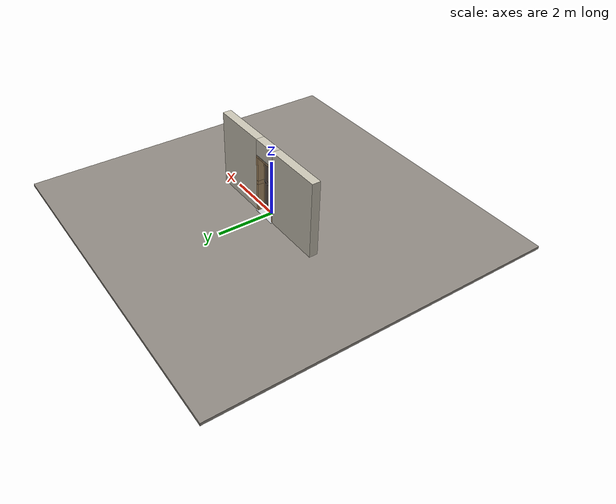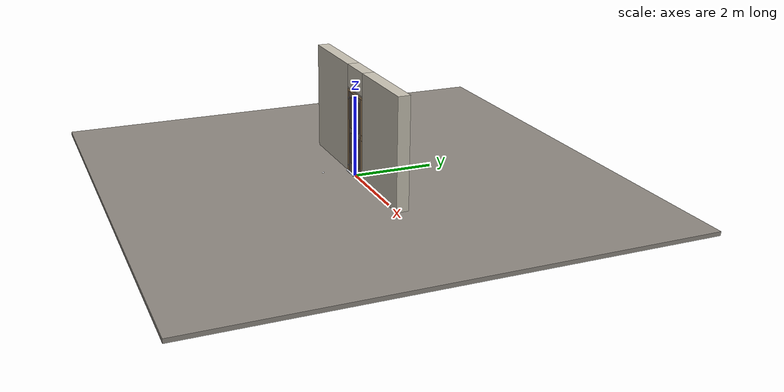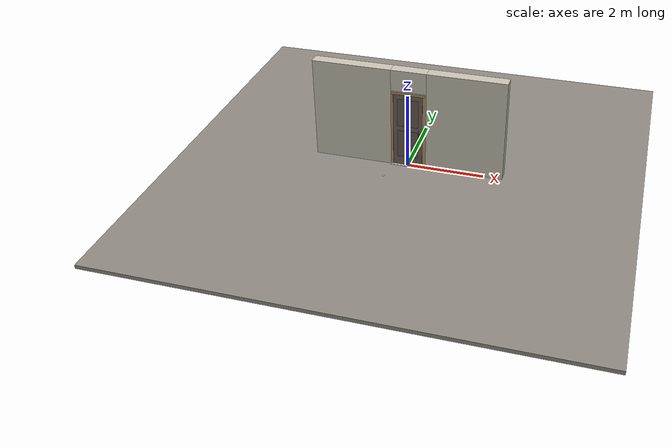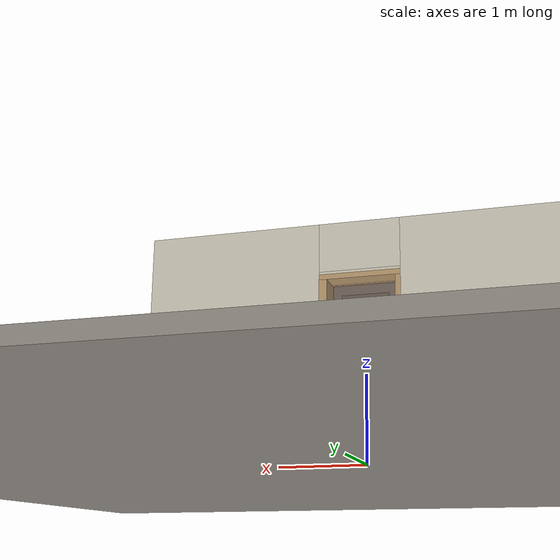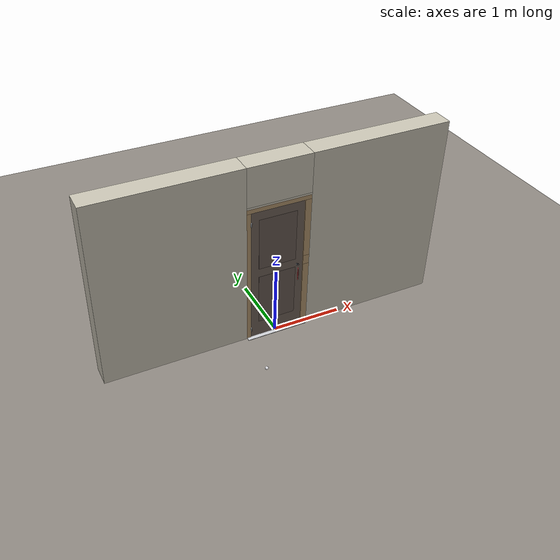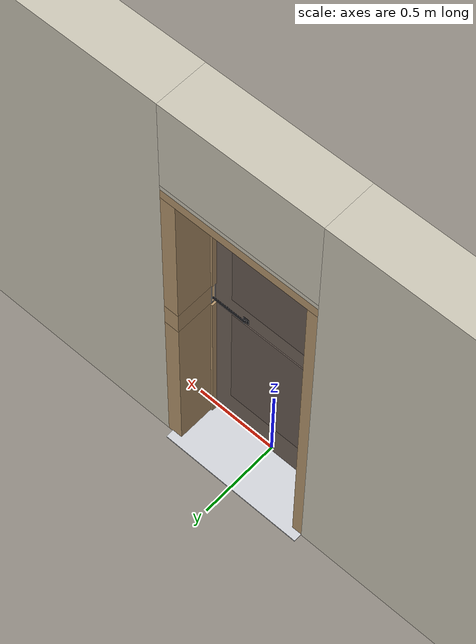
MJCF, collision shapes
<?xml version="1.0" ?>
<mujoco model="db0517_swing_single_full">
  <compiler angle="radian" meshdir="../../hardware" texturedir="../../textures" autolimits="true" inertiafromgeom="false"/>
  <option timestep="0.002" integrator="implicitfast" cone="elliptic" impratio="10" noslip_iterations="3">
    <flag multiccd="enable"/>
  </option>
  <size memory="16M"/>
  <default>
    <geom condim="4" solref="0.005 1" solimp="0.95 0.99 0.001"/>
    <joint solreflimit="0.005 1" solimplimit="0.95 0.99 0.001"/>
    <tendon solreflimit="0.005 1"/>
    <equality solref="0.002 1"/>
  </default>
  <visual>
    <headlight ambient="0.4 0.4 0.4" diffuse="0.7 0.7 0.7" specular="0.2 0.2 0.2"/>
    <quality shadowsize="4096"/>
    <map znear="0.01" zfar="60"/>
  </visual>
  <asset>
    <mesh name="strap_hinge_118b895b75" file="strap_hinge_118b895b75.obj"/>
    <mesh name="thumb_latch_0073ea78ed" file="thumb_latch_0073ea78ed.obj"/>
    <material name="mat_floor" rgba="0.55 0.53 0.5 1" specular="0.2" shininess="0.15" reflectance="0"/>
    <material name="mat_wall" rgba="0.78 0.76 0.7 1" specular="0.2" shininess="0.1" reflectance="0"/>
    <material name="mat_leaf" rgba="0.43 0.375 0.34 1" specular="0.2" shininess="0.55" reflectance="0"/>
    <material name="mat_leaf_panel" rgba="0.396 0.345 0.313 1" specular="0.2" shininess="0.55" reflectance="0"/>
    <material name="mat_hinge" rgba="0.65 0.66 0.68 1" specular="0.74" shininess="0.5" reflectance="0.36"/>
    <material name="mat_op_wrought_iron" rgba="0.08 0.08 0.09 1" specular="0.56" shininess="0.25" reflectance="0.24"/>
    <material name="mat_frame" rgba="0.7 0.58 0.42 1" specular="0.2" shininess="0.5" reflectance="0"/>
    <material name="mat_threshold" rgba="0.8 0.81 0.83 1" specular="0.8" shininess="0.6" reflectance="0.4"/>
    <material name="mat_stop" rgba="0.9 0.9 0.92 1" specular="0.8" shininess="0.9" reflectance="0.4"/>
    <texture name="skybox" type="skybox" builtin="gradient" rgb1="0.6 0.7 0.85" rgb2="0.9 0.92 0.95" width="256" height="256"/>
  </asset>
  <worldbody>
    <light name="sun" pos="1.5 -2.5 4" dir="-0.3 0.5 -0.8" directional="true" diffuse="0.8 0.8 0.8" specular="0.3 0.3 0.3" castshadow="true"/>
    <light name="fill" pos="-1.5 2.5 3" dir="0.3 -0.5 -0.7" directional="true" diffuse="0.35 0.35 0.4" castshadow="false"/>
    <camera name="robot_view" pos="0 -2.416687 1.734312" xyaxes="1 0 0 0 0.26963 0.962964" fovy="52"/>
    <camera name="far_view" pos="0 2.667687 1.734312" xyaxes="-1 0 0 0 -0.26963 0.962964" fovy="52"/>
    <camera name="iso" pos="1.932062 -2.009937 2.141063" xyaxes="0.741536 0.670913 0 -0.242917 0.268487 0.932151" fovy="46"/>
    <camera name="detail_handle" pos="0.4805 -0.8525 1.195" xyaxes="0.97561 0.219512 0 -0.070934 0.315262 0.94635" fovy="38"/>
    <geom name="floor" type="box" size="6 6 0.05" pos="0 0 -0.05" material="mat_floor" group="0" contype="1" conaffinity="1" friction="0.8 0.005 0.0001" density="2400"/>
    <geom name="wall_left" type="box" size="1.02775 0.15 1.35" pos="-1.47225 0.1255 1.35" material="mat_wall" group="0" contype="1" conaffinity="1" friction="0.6 0.005 0.0001" density="800"/>
    <geom name="wall_right" type="box" size="1.01275 0.15 1.35" pos="1.48725 0.1255 1.35" material="mat_wall" group="0" contype="1" conaffinity="1" friction="0.6 0.005 0.0001" density="800"/>
    <geom name="wall_header" type="box" size="0.4595 0.15 0.2825" pos="0.015 0.1255 2.4175" material="mat_wall" group="0" contype="1" conaffinity="1" friction="0.6 0.005 0.0001" density="800"/>
    <geom name="hinge_pintle_0" type="cylinder" size="0.008 0.02" pos="-0.3815 -0.0245 0.133" material="mat_hinge" group="1" contype="0" conaffinity="0" density="7850"/>
    <geom name="hinge_pintle_1" type="cylinder" size="0.008 0.02" pos="-0.3815 -0.0245 1.865" material="mat_hinge" group="1" contype="0" conaffinity="0" density="7850"/>
    <geom name="leaf_latch_bar_keeper_b" type="box" size="0.015 0.0025 0.0005" pos="0.384 0.0295 1.0275" quat="-0.5 -0.5 0.5 0.5" material="mat_op_wrought_iron" group="1" contype="0" conaffinity="0" density="7800"/>
    <geom name="leaf_latch_bar_keeper_l" type="box" size="0.0025 0.07 0.0005" pos="0.384 0.042 1.1" quat="-0.5 -0.5 0.5 0.5" material="mat_op_wrought_iron" group="1" contype="0" conaffinity="0" density="7800"/>
    <geom name="leaf_latch_bar_keeper_t" type="box" size="0.015 0.0025 0.0005" pos="0.384 0.0295 1.1725" quat="-0.5 -0.5 0.5 0.5" material="mat_op_wrought_iron" group="1" contype="0" conaffinity="0" density="7800"/>
    <geom name="leaf_latch_bar_keeper_r" type="box" size="0.0025 0.07 0.0005" pos="0.384 0.017 1.1" quat="-0.5 -0.5 0.5 0.5" material="mat_op_wrought_iron" group="1" contype="0" conaffinity="0" density="7800"/>
    <geom name="jamb_hinge" type="box" size="0.03 0.15 1.0225" pos="-0.4145 0.1255 1.0225" material="mat_frame" group="0" contype="1" conaffinity="1" friction="0.6 0.005 0.0001" density="750"/>
    <geom name="strike_1100_wall_n" type="box" size="0.045 0.118 0.07" pos="0.4295 0.1575 1.1" material="mat_frame" group="0" contype="1" conaffinity="1" friction="0.6 0.005 0.0001" density="750"/>
    <geom name="strike_1100_wall_p" type="box" size="0.045 0.022 0.07" pos="0.4295 -0.0025 1.1" material="mat_frame" group="0" contype="1" conaffinity="1" friction="0.6 0.005 0.0001" density="750"/>
    <geom name="strike_1100_back" type="box" size="0.035 0.01 0.07" pos="0.4395 0.0295 1.1" material="mat_frame" group="0" contype="1" conaffinity="1" friction="0.6 0.005 0.0001" density="750"/>
    <geom name="jamb_strike_0" type="box" size="0.045 0.15 0.515" pos="0.4295 0.1255 0.515" material="mat_frame" group="0" contype="1" conaffinity="1" friction="0.6 0.005 0.0001" density="750"/>
    <geom name="jamb_strike_1" type="box" size="0.045 0.15 0.4375" pos="0.4295 0.1255 1.6075" material="mat_frame" group="0" contype="1" conaffinity="1" friction="0.6 0.005 0.0001" density="750"/>
    <geom name="jamb_head" type="box" size="0.4595 0.15 0.03" pos="0.015 0.1255 2.075" material="mat_frame" group="0" contype="1" conaffinity="1" friction="0.6 0.005 0.0001" density="750"/>
    <geom name="head_stud" type="box" size="0.4595 0.15 0.015" pos="0.015 0.1255 2.12" material="mat_wall" group="0" contype="1" conaffinity="1" friction="0.6 0.005 0.0001" density="500"/>
    <geom name="stop_hinge" type="box" size="0.0055 0.016 1.0225" pos="-0.379 0.034 1.0225" material="mat_frame" group="0" contype="1" conaffinity="1" friction="0.6 0.005 0.0001" density="750"/>
    <geom name="stop_strike" type="box" size="0.0055 0.016 0.509" pos="0.379 0.034 0.509" material="mat_frame" group="0" contype="1" conaffinity="1" friction="0.6 0.005 0.0001" density="750"/>
    <geom name="stop_strike_1" type="box" size="0.0055 0.016 0.4315" pos="0.379 0.034 1.6135" material="mat_frame" group="0" contype="1" conaffinity="1" friction="0.6 0.005 0.0001" density="750"/>
    <geom name="stop_head" type="box" size="0.3845 0.016 0.0055" pos="0 0.034 2.0395" material="mat_frame" group="0" contype="1" conaffinity="1" friction="0.6 0.005 0.0001" density="750"/>
    <geom name="threshold" type="box" size="0.4445 0.2 0.004" pos="0 0.1255 0.004" material="mat_threshold" group="0" contype="1" conaffinity="1" friction="0.6 0.005 0.0001" density="2700"/>
    <geom name="floor_stop_dome" type="sphere" size="0.025" pos="-0.457875 -0.667992 0" material="mat_stop" group="0" contype="1" conaffinity="1" friction="0.6 0.005 0.0001" density="7000"/>
    <geom name="hinge_pintle_0_strap_0" type="box" size="0.0064 0.01775 0.016" pos="-0.3815 0.00075 0.133" material="mat_hinge" group="1" contype="0" conaffinity="0" density="7850"/>
    <geom name="hinge_pintle_1_strap_0" type="box" size="0.0064 0.01775 0.016" pos="-0.3815 0.00075 1.865" material="mat_hinge" group="1" contype="0" conaffinity="0" density="7850"/>
    <site name="approach_point" pos="0 -1.5 0" quat="1 0 0 0" size="0.05" rgba="0.2 0.9 0.2 0.5" group="4"/>
    <site name="goal_point" pos="0 1.5 0" quat="1 0 0 0" size="0.05" rgba="0.2 0.9 0.2 0.5" group="4"/>
    <site name="door_plane_center" pos="0 0 1.0225" quat="1 0 0 0" size="0.02" rgba="0.2 0.9 0.2 0.5" group="4"/>
    <body name="leaf" pos="-0.3845 0 0">
      <inertial pos="0.374885 -0.00327 1.022778" mass="36.533566" quat="-0.499785 0.499181 0.50092 0.500112" diaginertia="1.777672962 14.128823392 15.894389347"/>
      <joint name="leaf_hinge" type="hinge" axis="0 0 -1" pos="0.003 -0.0245 0" limited="true" range="0 1.658063" damping="0.173726" frictionloss="8.977736" armature="0.02"/>
      <geom name="leaf_slab" type="box" size="0.381 0.0175 1.016" pos="0.384 0 1.025" material="mat_leaf" group="0" contype="1" conaffinity="1" friction="0.35 0.005 0.0001" density="1"/>
      <geom name="leaf_panel_0_n" type="box" size="0.271 0.003 0.38422" pos="0.384 -0.0205 0.63674" material="mat_leaf_panel" group="1" contype="0" conaffinity="0" density="1"/>
      <geom name="leaf_panel_0_p" type="box" size="0.271 0.003 0.38422" pos="0.384 0.0205 0.63674" material="mat_leaf_panel" group="1" contype="0" conaffinity="0" density="1"/>
      <geom name="leaf_panel_1_n" type="box" size="0.271 0.003 0.38422" pos="0.384 -0.0205 1.53518" material="mat_leaf_panel" group="1" contype="0" conaffinity="0" density="1"/>
      <geom name="leaf_panel_1_p" type="box" size="0.271 0.003 0.38422" pos="0.384 0.0205 1.53518" material="mat_leaf_panel" group="1" contype="0" conaffinity="0" density="1"/>
      <geom name="hinge_strap_0" type="mesh" mesh="strap_hinge_118b895b75" pos="0.003 -0.0205 0.159" material="mat_hinge" group="1" contype="0" conaffinity="0" density="7850"/>
      <geom name="hinge_strap_eye_0" type="cylinder" size="0.011 0.012" pos="0.003 -0.0245 0.159" material="mat_hinge" group="1" contype="0" conaffinity="0" density="7850"/>
      <geom name="hinge_strap_neck_0" type="box" size="0.012 0.006 0.006" pos="0.003 -0.0225 0.159" material="mat_hinge" group="1" contype="0" conaffinity="0" density="7850"/>
      <geom name="hinge_strap_1" type="mesh" mesh="strap_hinge_118b895b75" pos="0.003 -0.0205 1.891" material="mat_hinge" group="1" contype="0" conaffinity="0" density="7850"/>
      <geom name="hinge_strap_eye_1" type="cylinder" size="0.011 0.012" pos="0.003 -0.0245 1.891" material="mat_hinge" group="1" contype="0" conaffinity="0" density="7850"/>
      <geom name="hinge_strap_neck_1" type="box" size="0.012 0.006 0.006" pos="0.003 -0.0225 1.891" material="mat_hinge" group="1" contype="0" conaffinity="0" density="7850"/>
      <geom name="leaf_suffolk_grip" type="mesh" mesh="thumb_latch_0073ea78ed" pos="0.685 -0.0175 0.915" quat="0.707107 0.707107 0 0" material="mat_op_wrought_iron" group="1" contype="0" conaffinity="0" density="7000"/>
      <geom name="leaf_suffolk_grip_col" type="capsule" size="0.008 0.09" pos="0.685 -0.0525 0.915" material="mat_op_wrought_iron" group="3" contype="1" conaffinity="1" rgba="0.8 0.3 0.3 0.25" friction="0.7 0.01 0.0001" density="7000"/>
      <geom name="leaf_latch_bar_pivot" type="box" size="0.018 0.002 0.018" pos="0.565 0.0195 1.055" material="mat_op_wrought_iron" group="1" contype="0" conaffinity="0" density="7000"/>
      <geom name="leaf_latch_bar_pin" type="cylinder" size="0.005 0.01" pos="0.565 0.0275 1.055" quat="0.707107 -0.707107 0 0" material="mat_op_wrought_iron" group="1" contype="0" conaffinity="0" density="7000"/>
      <site name="leaf_grip_n" pos="0.685 -0.0525 0.915" quat="1 0 0 0" size="0.012" rgba="0.2 0.9 0.2 0.5" group="4"/>
      <site name="leaf_edge_mid" pos="0.765 0 1.016" quat="1 0 0 0" size="0.02" rgba="0.2 0.9 0.2 0.5" group="4"/>
      <body name="leaf_thumb" pos="0.685 -0.0175 1.06">
        <inertial pos="0 -0.004279 -0.00544" mass="0.124432" quat="0.696808 -0.120246 -0.120246 -0.696808" diaginertia="0.00001061 0.000038132 0.000039729"/>
        <joint name="leaf_thumb_hinge" type="hinge" axis="1 0 0" limited="true" range="0 0.3" damping="0.155261" frictionloss="0.032" stiffness="0.6" springref="-0.5" armature="0.01"/>
        <geom name="leaf_thumb_geom" type="box" size="0.015 0.014 0.003" pos="0 -0.02 0" material="mat_op_wrought_iron" group="0" contype="1" conaffinity="1" friction="0.6 0.005 0.0001" density="7000"/>
        <geom name="leaf_thumb_boss" type="box" size="0.012 0.008 0.013" pos="0 -0.004 -0.005" material="mat_op_wrought_iron" group="1" contype="0" conaffinity="0" density="7000"/>
        <geom name="leaf_thumb_lifter" type="box" size="0.004 0.0215 0.004" pos="0 0.0235 -0.017" material="mat_op_wrought_iron" group="1" contype="0" conaffinity="0" density="7000"/>
        <site name="leaf_thumb_push" pos="0 -0.024 0.005" quat="1 0 0 0" size="0.01" rgba="0.2 0.9 0.2 0.5" group="4"/>
      </body>
      <body name="leaf_latch_bar" pos="0.565 0.0295 1.055">
        <inertial pos="0.106 0 0" mass="0.25" quat="0 0 0.707107 0.707107" diaginertia="0.000004465 0.000904065 0.000904065"/>
        <joint name="leaf_latch_bar_hinge" type="hinge" axis="0 -1 0" limited="true" range="0 0.6" damping="0.01" frictionloss="0.01" armature="0.005"/>
        <geom name="leaf_latch_bar_geom" type="capsule" size="0.006 0.1" pos="0.106 0 0" quat="0.707107 0 0.707107 0" material="mat_op_wrought_iron" group="0" contype="1" conaffinity="1" friction="0.6 0.005 0.0001" density="7850"/>
      </body>
    </body>
  </worldbody>
  <equality>
    <joint name="leaf_thumb_couple" joint1="leaf_latch_bar_hinge" joint2="leaf_thumb_hinge" polycoef="0 2 0 0 0" active="true"/>
  </equality>
  <sensor>
    <jointpos name="leaf_hinge_pos" joint="leaf_hinge"/>
    <jointvel name="leaf_hinge_vel" joint="leaf_hinge"/>
    <jointpos name="leaf_thumb_hinge_pos" joint="leaf_thumb_hinge"/>
    <jointvel name="leaf_thumb_hinge_vel" joint="leaf_thumb_hinge"/>
    <jointpos name="leaf_latch_bar_hinge_pos" joint="leaf_latch_bar_hinge"/>
    <jointvel name="leaf_latch_bar_hinge_vel" joint="leaf_latch_bar_hinge"/>
  </sensor>
</mujoco>
